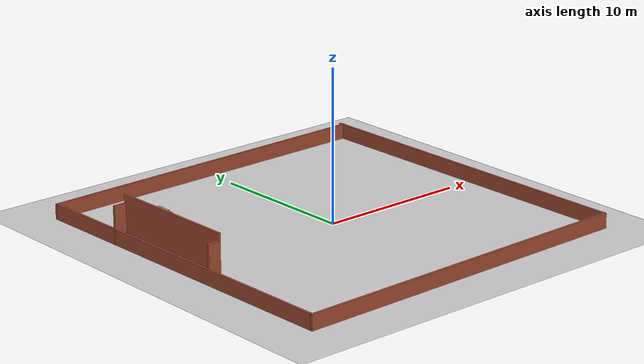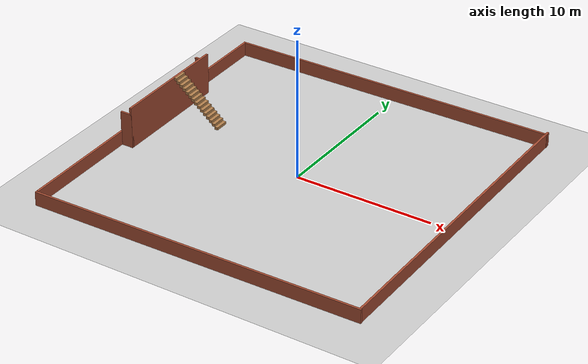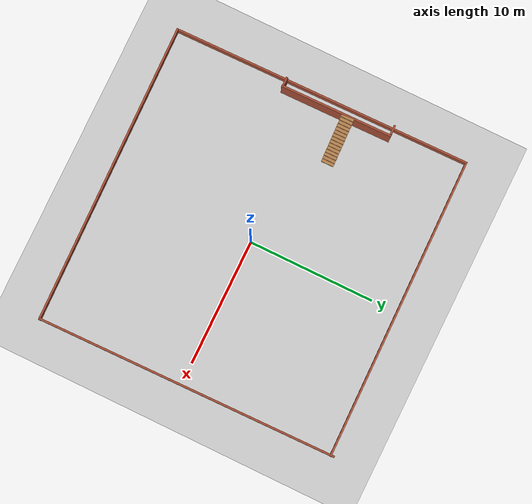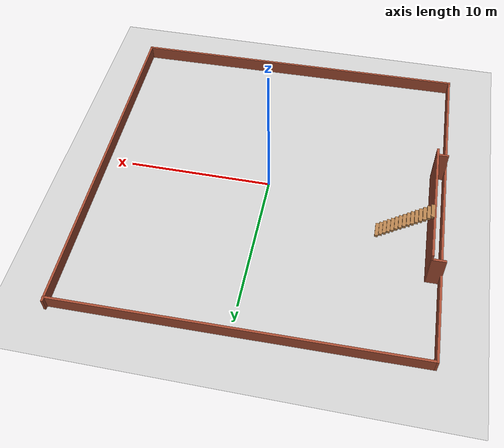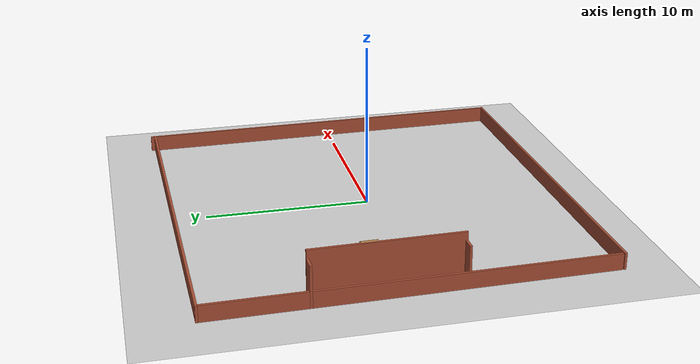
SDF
<sdf version="1.6">
 <world name="default">
  <light name="sun" type="directional">
   <pose>0 0 10 0 -0 0</pose>
   <diffuse>0.8 0.8 0.8 1</diffuse>
   <specular>0.2 0.2 0.2 1</specular>
   <attenuation>
    <range>1000</range>
    <constant>0.9</constant>
    <linear>0.01</linear>
    <quadratic>0.001</quadratic>
   </attenuation>
   <direction>-0.5 0.1 -0.9</direction>
  </light>
  <model name="ground_plane">
   <static>1</static>
   <link name="link">
    <collision name="collision">
     <geometry><plane><normal>0 0 1</normal><size>100 100</size></plane></geometry>
     <surface>
      <contact><collide_bitmask>65535</collide_bitmask></contact>
      <friction><ode><mu>100</mu><mu2>50</mu2></ode></friction>
     </surface>
    </collision>
    <visual name="visual">
     <cast_shadows>0</cast_shadows>
     <geometry><plane><normal>0 0 1</normal><size>100 100</size></plane></geometry>
     <material>
      <script><uri>file://media/materials/scripts/gazebo.material</uri><name>Gazebo/Grey</name></script>
     </material>
    </visual>
   </link>
  </model>
  <gravity>0 0 -9.8</gravity>
  <magnetic_field>6e-06 2.3e-05 -4.2e-05</magnetic_field>
  <atmosphere type="adiabatic"/>
  <physics name="default_physics" default="0" type="ode">
   <max_step_size>0.001</max_step_size>
   <real_time_factor>1</real_time_factor>
   <real_time_update_rate>1000</real_time_update_rate>
  </physics>
  <scene><ambient>0.4 0.4 0.4 1</ambient><background>0.7 0.7 0.7 1</background><shadows>1</shadows></scene>
  <audio><device>default</device></audio>
  <spherical_coordinates>
   <surface_model>EARTH_WGS84</surface_model>
   <latitude_deg>0</latitude_deg>
   <longitude_deg>0</longitude_deg>
   <elevation>0</elevation>
   <heading_deg>0</heading_deg>
  </spherical_coordinates>
  <model name="roof_top">
   <link name="Stairs_1">
    <visual name="Stairs_1_Visual_0">
     <pose>-2.39698 -7.70315 0.1 0 -0 0</pose>
     <geometry><box><size>1 0.233333 0.2</size></box></geometry>
     <material>
      <script><uri>file://media/materials/scripts/gazebo.material</uri><name>Gazebo/Wood</name></script>
      <ambient>1 1 1 1</ambient>
     </material>
     <meta><layer>0</layer></meta>
    </visual>
    <visual name="Stairs_1_Visual_1">
     <pose>-2.39698 -7.93648 0.3 0 -0 0</pose>
     <geometry><box><size>1 0.233333 0.2</size></box></geometry>
     <material>
      <script><uri>file://media/materials/scripts/gazebo.material</uri><name>Gazebo/Wood</name></script>
      <ambient>1 1 1 1</ambient>
     </material>
     <meta><layer>0</layer></meta>
    </visual>
    <visual name="Stairs_1_Visual_2">
     <pose>-2.39698 -8.16981 0.5 0 -0 0</pose>
     <geometry><box><size>1 0.233333 0.2</size></box></geometry>
     <material>
      <script><uri>file://media/materials/scripts/gazebo.material</uri><name>Gazebo/Wood</name></script>
      <ambient>1 1 1 1</ambient>
     </material>
     <meta><layer>0</layer></meta>
    </visual>
    <visual name="Stairs_1_Visual_3">
     <pose>-2.39698 -8.40315 0.7 0 -0 0</pose>
     <geometry><box><size>1 0.233333 0.2</size></box></geometry>
     <material>
      <script><uri>file://media/materials/scripts/gazebo.material</uri><name>Gazebo/Wood</name></script>
      <ambient>1 1 1 1</ambient>
     </material>
     <meta><layer>0</layer></meta>
    </visual>
    <visual name="Stairs_1_Visual_4">
     <pose>-2.39698 -8.63648 0.9 0 -0 0</pose>
     <geometry><box><size>1 0.233333 0.2</size></box></geometry>
     <material>
      <script><uri>file://media/materials/scripts/gazebo.material</uri><name>Gazebo/Wood</name></script>
      <ambient>1 1 1 1</ambient>
     </material>
     <meta><layer>0</layer></meta>
    </visual>
    <visual name="Stairs_1_Visual_5">
     <pose>-2.39698 -8.86981 1.1 0 -0 0</pose>
     <geometry><box><size>1 0.233333 0.2</size></box></geometry>
     <material>
      <script><uri>file://media/materials/scripts/gazebo.material</uri><name>Gazebo/Wood</name></script>
      <ambient>1 1 1 1</ambient>
     </material>
     <meta><layer>0</layer></meta>
    </visual>
    <visual name="Stairs_1_Visual_6">
     <pose>-2.39698 -9.10315 1.3 0 -0 0</pose>
     <geometry><box><size>1 0.233333 0.2</size></box></geometry>
     <material>
      <script><uri>file://media/materials/scripts/gazebo.material</uri><name>Gazebo/Wood</name></script>
      <ambient>1 1 1 1</ambient>
     </material>
     <meta><layer>0</layer></meta>
    </visual>
    <visual name="Stairs_1_Visual_7">
     <pose>-2.39698 -9.33648 1.5 0 -0 0</pose>
     <geometry><box><size>1 0.233333 0.2</size></box></geometry>
     <material>
      <script><uri>file://media/materials/scripts/gazebo.material</uri><name>Gazebo/Wood</name></script>
      <ambient>1 1 1 1</ambient>
     </material>
     <meta><layer>0</layer></meta>
    </visual>
    <visual name="Stairs_1_Visual_8">
     <pose>-2.39698 -9.56982 1.7 0 -0 0</pose>
     <geometry><box><size>1 0.233333 0.2</size></box></geometry>
     <material>
      <script><uri>file://media/materials/scripts/gazebo.material</uri><name>Gazebo/Wood</name></script>
      <ambient>1 1 1 1</ambient>
     </material>
     <meta><layer>0</layer></meta>
    </visual>
    <visual name="Stairs_1_Visual_9">
     <pose>-2.39698 -9.80315 1.9 0 -0 0</pose>
     <geometry><box><size>1 0.233333 0.2</size></box></geometry>
     <material>
      <script><uri>file://media/materials/scripts/gazebo.material</uri><name>Gazebo/Wood</name></script>
      <ambient>1 1 1 1</ambient>
     </material>
     <meta><layer>0</layer></meta>
    </visual>
    <visual name="Stairs_1_Visual_10">
     <pose>-2.39698 -10.0365 2.1 0 -0 0</pose>
     <geometry><box><size>1 0.233333 0.2</size></box></geometry>
     <material>
      <script><uri>file://media/materials/scripts/gazebo.material</uri><name>Gazebo/Wood</name></script>
      <ambient>1 1 1 1</ambient>
     </material>
     <meta><layer>0</layer></meta>
    </visual>
    <visual name="Stairs_1_Visual_11">
     <pose>-2.39698 -10.2698 2.3 0 -0 0</pose>
     <geometry><box><size>1 0.233333 0.2</size></box></geometry>
     <material>
      <script><uri>file://media/materials/scripts/gazebo.material</uri><name>Gazebo/Wood</name></script>
      <ambient>1 1 1 1</ambient>
     </material>
     <meta><layer>0</layer></meta>
    </visual>
    <visual name="Stairs_1_Visual_12">
     <pose>-2.39698 -10.5031 2.5 0 -0 0</pose>
     <geometry><box><size>1 0.233333 0.2</size></box></geometry>
     <material>
      <script><uri>file://media/materials/scripts/gazebo.material</uri><name>Gazebo/Wood</name></script>
      <ambient>1 1 1 1</ambient>
     </material>
     <meta><layer>0</layer></meta>
    </visual>
    <visual name="Stairs_1_Visual_13">
     <pose>-2.39698 -10.7365 2.7 0 -0 0</pose>
     <geometry><box><size>1 0.233333 0.2</size></box></geometry>
     <material>
      <script><uri>file://media/materials/scripts/gazebo.material</uri><name>Gazebo/Wood</name></script>
      <ambient>1 1 1 1</ambient>
     </material>
     <meta><layer>0</layer></meta>
    </visual>
    <visual name="Stairs_1_Visual_14">
     <pose>-2.39698 -10.9698 2.9 0 -0 0</pose>
     <geometry><box><size>1 0.233333 0.2</size></box></geometry>
     <material>
      <script><uri>file://media/materials/scripts/gazebo.material</uri><name>Gazebo/Wood</name></script>
      <ambient>1 1 1 1</ambient>
     </material>
     <meta><layer>0</layer></meta>
    </visual>
    <collision name="Stairs_1_Collision_0">
     <pose>-2.39698 -7.70315 0.1 0 -0 0</pose>
     <geometry><box><size>1 0.233333 0.2</size></box></geometry>
     <surface>
      <friction>
       <ode><mu>1</mu><mu2>1</mu2><fdir1>0 0 0</fdir1><slip1>0</slip1><slip2>0</slip2></ode>
       <torsional>
        <coefficient>1</coefficient>
        <patch_radius>0</patch_radius>
        <surface_radius>0</surface_radius>
        <use_patch_radius>1</use_patch_radius>
        <ode><slip>0</slip></ode>
       </torsional>
      </friction>
      <bounce><restitution_coefficient>0</restitution_coefficient><threshold>1e+06</threshold></bounce>
      <contact>
       <collide_without_contact>0</collide_without_contact>
       <collide_without_contact_bitmask>1</collide_without_contact_bitmask>
       <collide_bitmask>1</collide_bitmask>
       <ode>
        <soft_cfm>0</soft_cfm>
        <soft_erp>0.2</soft_erp>
        <kp>1e+13</kp>
        <kd>1</kd>
        <max_vel>0.01</max_vel>
        <min_depth>0</min_depth>
       </ode>
       <bullet>
        <split_impulse>1</split_impulse>
        <split_impulse_penetration_threshold>-0.01</split_impulse_penetration_threshold>
        <soft_cfm>0</soft_cfm>
        <soft_erp>0.2</soft_erp>
        <kp>1e+13</kp>
        <kd>1</kd>
       </bullet>
      </contact>
     </surface>
    </collision>
    <collision name="Stairs_1_Collision_1">
     <pose>-2.39698 -7.93648 0.3 0 -0 0</pose>
     <geometry><box><size>1 0.233333 0.2</size></box></geometry>
     <surface>
      <friction>
       <ode><mu>1</mu><mu2>1</mu2><fdir1>0 0 0</fdir1><slip1>0</slip1><slip2>0</slip2></ode>
       <torsional>
        <coefficient>1</coefficient>
        <patch_radius>0</patch_radius>
        <surface_radius>0</surface_radius>
        <use_patch_radius>1</use_patch_radius>
        <ode><slip>0</slip></ode>
       </torsional>
      </friction>
      <bounce><restitution_coefficient>0</restitution_coefficient><threshold>1e+06</threshold></bounce>
      <contact>
       <collide_without_contact>0</collide_without_contact>
       <collide_without_contact_bitmask>1</collide_without_contact_bitmask>
       <collide_bitmask>1</collide_bitmask>
       <ode>
        <soft_cfm>0</soft_cfm>
        <soft_erp>0.2</soft_erp>
        <kp>1e+13</kp>
        <kd>1</kd>
        <max_vel>0.01</max_vel>
        <min_depth>0</min_depth>
       </ode>
       <bullet>
        <split_impulse>1</split_impulse>
        <split_impulse_penetration_threshold>-0.01</split_impulse_penetration_threshold>
        <soft_cfm>0</soft_cfm>
        <soft_erp>0.2</soft_erp>
        <kp>1e+13</kp>
        <kd>1</kd>
       </bullet>
      </contact>
     </surface>
    </collision>
    <collision name="Stairs_1_Collision_2">
     <pose>-2.39698 -8.16981 0.5 0 -0 0</pose>
     <geometry><box><size>1 0.233333 0.2</size></box></geometry>
     <surface>
      <friction>
       <ode><mu>1</mu><mu2>1</mu2><fdir1>0 0 0</fdir1><slip1>0</slip1><slip2>0</slip2></ode>
       <torsional>
        <coefficient>1</coefficient>
        <patch_radius>0</patch_radius>
        <surface_radius>0</surface_radius>
        <use_patch_radius>1</use_patch_radius>
        <ode><slip>0</slip></ode>
       </torsional>
      </friction>
      <bounce><restitution_coefficient>0</restitution_coefficient><threshold>1e+06</threshold></bounce>
      <contact>
       <collide_without_contact>0</collide_without_contact>
       <collide_without_contact_bitmask>1</collide_without_contact_bitmask>
       <collide_bitmask>1</collide_bitmask>
       <ode>
        <soft_cfm>0</soft_cfm>
        <soft_erp>0.2</soft_erp>
        <kp>1e+13</kp>
        <kd>1</kd>
        <max_vel>0.01</max_vel>
        <min_depth>0</min_depth>
       </ode>
       <bullet>
        <split_impulse>1</split_impulse>
        <split_impulse_penetration_threshold>-0.01</split_impulse_penetration_threshold>
        <soft_cfm>0</soft_cfm>
        <soft_erp>0.2</soft_erp>
        <kp>1e+13</kp>
        <kd>1</kd>
       </bullet>
      </contact>
     </surface>
    </collision>
    <collision name="Stairs_1_Collision_3">
     <pose>-2.39698 -8.40315 0.7 0 -0 0</pose>
     <geometry><box><size>1 0.233333 0.2</size></box></geometry>
     <surface>
      <friction>
       <ode><mu>1</mu><mu2>1</mu2><fdir1>0 0 0</fdir1><slip1>0</slip1><slip2>0</slip2></ode>
       <torsional>
        <coefficient>1</coefficient>
        <patch_radius>0</patch_radius>
        <surface_radius>0</surface_radius>
        <use_patch_radius>1</use_patch_radius>
        <ode><slip>0</slip></ode>
       </torsional>
      </friction>
      <bounce><restitution_coefficient>0</restitution_coefficient><threshold>1e+06</threshold></bounce>
      <contact>
       <collide_without_contact>0</collide_without_contact>
       <collide_without_contact_bitmask>1</collide_without_contact_bitmask>
       <collide_bitmask>1</collide_bitmask>
       <ode>
        <soft_cfm>0</soft_cfm>
        <soft_erp>0.2</soft_erp>
        <kp>1e+13</kp>
        <kd>1</kd>
        <max_vel>0.01</max_vel>
        <min_depth>0</min_depth>
       </ode>
       <bullet>
        <split_impulse>1</split_impulse>
        <split_impulse_penetration_threshold>-0.01</split_impulse_penetration_threshold>
        <soft_cfm>0</soft_cfm>
        <soft_erp>0.2</soft_erp>
        <kp>1e+13</kp>
        <kd>1</kd>
       </bullet>
      </contact>
     </surface>
    </collision>
    <collision name="Stairs_1_Collision_4">
     <pose>-2.39698 -8.63648 0.9 0 -0 0</pose>
     <geometry><box><size>1 0.233333 0.2</size></box></geometry>
     <surface>
      <friction>
       <ode><mu>1</mu><mu2>1</mu2><fdir1>0 0 0</fdir1><slip1>0</slip1><slip2>0</slip2></ode>
       <torsional>
        <coefficient>1</coefficient>
        <patch_radius>0</patch_radius>
        <surface_radius>0</surface_radius>
        <use_patch_radius>1</use_patch_radius>
        <ode><slip>0</slip></ode>
       </torsional>
      </friction>
      <bounce><restitution_coefficient>0</restitution_coefficient><threshold>1e+06</threshold></bounce>
      <contact>
       <collide_without_contact>0</collide_without_contact>
       <collide_without_contact_bitmask>1</collide_without_contact_bitmask>
       <collide_bitmask>1</collide_bitmask>
       <ode>
        <soft_cfm>0</soft_cfm>
        <soft_erp>0.2</soft_erp>
        <kp>1e+13</kp>
        <kd>1</kd>
        <max_vel>0.01</max_vel>
        <min_depth>0</min_depth>
       </ode>
       <bullet>
        <split_impulse>1</split_impulse>
        <split_impulse_penetration_threshold>-0.01</split_impulse_penetration_threshold>
        <soft_cfm>0</soft_cfm>
        <soft_erp>0.2</soft_erp>
        <kp>1e+13</kp>
        <kd>1</kd>
       </bullet>
      </contact>
     </surface>
    </collision>
    <collision name="Stairs_1_Collision_5">
     <pose>-2.39698 -8.86981 1.1 0 -0 0</pose>
     <geometry><box><size>1 0.233333 0.2</size></box></geometry>
     <surface>
      <friction>
       <ode><mu>1</mu><mu2>1</mu2><fdir1>0 0 0</fdir1><slip1>0</slip1><slip2>0</slip2></ode>
       <torsional>
        <coefficient>1</coefficient>
        <patch_radius>0</patch_radius>
        <surface_radius>0</surface_radius>
        <use_patch_radius>1</use_patch_radius>
        <ode><slip>0</slip></ode>
       </torsional>
      </friction>
      <bounce><restitution_coefficient>0</restitution_coefficient><threshold>1e+06</threshold></bounce>
      <contact>
       <collide_without_contact>0</collide_without_contact>
       <collide_without_contact_bitmask>1</collide_without_contact_bitmask>
       <collide_bitmask>1</collide_bitmask>
       <ode>
        <soft_cfm>0</soft_cfm>
        <soft_erp>0.2</soft_erp>
        <kp>1e+13</kp>
        <kd>1</kd>
        <max_vel>0.01</max_vel>
        <min_depth>0</min_depth>
       </ode>
       <bullet>
        <split_impulse>1</split_impulse>
        <split_impulse_penetration_threshold>-0.01</split_impulse_penetration_threshold>
        <soft_cfm>0</soft_cfm>
        <soft_erp>0.2</soft_erp>
        <kp>1e+13</kp>
        <kd>1</kd>
       </bullet>
      </contact>
     </surface>
    </collision>
    <collision name="Stairs_1_Collision_6">
     <pose>-2.39698 -9.10315 1.3 0 -0 0</pose>
     <geometry><box><size>1 0.233333 0.2</size></box></geometry>
     <surface>
      <friction>
       <ode><mu>1</mu><mu2>1</mu2><fdir1>0 0 0</fdir1><slip1>0</slip1><slip2>0</slip2></ode>
       <torsional>
        <coefficient>1</coefficient>
        <patch_radius>0</patch_radius>
        <surface_radius>0</surface_radius>
        <use_patch_radius>1</use_patch_radius>
        <ode><slip>0</slip></ode>
       </torsional>
      </friction>
      <bounce><restitution_coefficient>0</restitution_coefficient><threshold>1e+06</threshold></bounce>
      <contact>
       <collide_without_contact>0</collide_without_contact>
       <collide_without_contact_bitmask>1</collide_without_contact_bitmask>
       <collide_bitmask>1</collide_bitmask>
       <ode>
        <soft_cfm>0</soft_cfm>
        <soft_erp>0.2</soft_erp>
        <kp>1e+13</kp>
        <kd>1</kd>
        <max_vel>0.01</max_vel>
        <min_depth>0</min_depth>
       </ode>
       <bullet>
        <split_impulse>1</split_impulse>
        <split_impulse_penetration_threshold>-0.01</split_impulse_penetration_threshold>
        <soft_cfm>0</soft_cfm>
        <soft_erp>0.2</soft_erp>
        <kp>1e+13</kp>
        <kd>1</kd>
       </bullet>
      </contact>
     </surface>
    </collision>
    <collision name="Stairs_1_Collision_7">
     <pose>-2.39698 -9.33648 1.5 0 -0 0</pose>
     <geometry><box><size>1 0.233333 0.2</size></box></geometry>
     <surface>
      <friction>
       <ode><mu>1</mu><mu2>1</mu2><fdir1>0 0 0</fdir1><slip1>0</slip1><slip2>0</slip2></ode>
       <torsional>
        <coefficient>1</coefficient>
        <patch_radius>0</patch_radius>
        <surface_radius>0</surface_radius>
        <use_patch_radius>1</use_patch_radius>
        <ode><slip>0</slip></ode>
       </torsional>
      </friction>
      <bounce><restitution_coefficient>0</restitution_coefficient><threshold>1e+06</threshold></bounce>
      <contact>
       <collide_without_contact>0</collide_without_contact>
       <collide_without_contact_bitmask>1</collide_without_contact_bitmask>
       <collide_bitmask>1</collide_bitmask>
       <ode>
        <soft_cfm>0</soft_cfm>
        <soft_erp>0.2</soft_erp>
        <kp>1e+13</kp>
        <kd>1</kd>
        <max_vel>0.01</max_vel>
        <min_depth>0</min_depth>
       </ode>
       <bullet>
        <split_impulse>1</split_impulse>
        <split_impulse_penetration_threshold>-0.01</split_impulse_penetration_threshold>
        <soft_cfm>0</soft_cfm>
        <soft_erp>0.2</soft_erp>
        <kp>1e+13</kp>
        <kd>1</kd>
       </bullet>
      </contact>
     </surface>
    </collision>
    <collision name="Stairs_1_Collision_8">
     <pose>-2.39698 -9.56982 1.7 0 -0 0</pose>
     <geometry><box><size>1 0.233333 0.2</size></box></geometry>
     <surface>
      <friction>
       <ode><mu>1</mu><mu2>1</mu2><fdir1>0 0 0</fdir1><slip1>0</slip1><slip2>0</slip2></ode>
       <torsional>
        <coefficient>1</coefficient>
        <patch_radius>0</patch_radius>
        <surface_radius>0</surface_radius>
        <use_patch_radius>1</use_patch_radius>
        <ode><slip>0</slip></ode>
       </torsional>
      </friction>
      <bounce><restitution_coefficient>0</restitution_coefficient><threshold>1e+06</threshold></bounce>
      <contact>
       <collide_without_contact>0</collide_without_contact>
       <collide_without_contact_bitmask>1</collide_without_contact_bitmask>
       <collide_bitmask>1</collide_bitmask>
       <ode>
        <soft_cfm>0</soft_cfm>
        <soft_erp>0.2</soft_erp>
        <kp>1e+13</kp>
        <kd>1</kd>
        <max_vel>0.01</max_vel>
        <min_depth>0</min_depth>
       </ode>
       <bullet>
        <split_impulse>1</split_impulse>
        <split_impulse_penetration_threshold>-0.01</split_impulse_penetration_threshold>
        <soft_cfm>0</soft_cfm>
        <soft_erp>0.2</soft_erp>
        <kp>1e+13</kp>
        <kd>1</kd>
       </bullet>
      </contact>
     </surface>
    </collision>
    <collision name="Stairs_1_Collision_9">
     <pose>-2.39698 -9.80315 1.9 0 -0 0</pose>
     <geometry><box><size>1 0.233333 0.2</size></box></geometry>
     <surface>
      <friction>
       <ode><mu>1</mu><mu2>1</mu2><fdir1>0 0 0</fdir1><slip1>0</slip1><slip2>0</slip2></ode>
       <torsional>
        <coefficient>1</coefficient>
        <patch_radius>0</patch_radius>
        <surface_radius>0</surface_radius>
        <use_patch_radius>1</use_patch_radius>
        <ode><slip>0</slip></ode>
       </torsional>
      </friction>
      <bounce><restitution_coefficient>0</restitution_coefficient><threshold>1e+06</threshold></bounce>
      <contact>
       <collide_without_contact>0</collide_without_contact>
       <collide_without_contact_bitmask>1</collide_without_contact_bitmask>
       <collide_bitmask>1</collide_bitmask>
       <ode>
        <soft_cfm>0</soft_cfm>
        <soft_erp>0.2</soft_erp>
        <kp>1e+13</kp>
        <kd>1</kd>
        <max_vel>0.01</max_vel>
        <min_depth>0</min_depth>
       </ode>
       <bullet>
        <split_impulse>1</split_impulse>
        <split_impulse_penetration_threshold>-0.01</split_impulse_penetration_threshold>
        <soft_cfm>0</soft_cfm>
        <soft_erp>0.2</soft_erp>
        <kp>1e+13</kp>
        <kd>1</kd>
       </bullet>
      </contact>
     </surface>
    </collision>
    <collision name="Stairs_1_Collision_10">
     <pose>-2.39698 -10.0365 2.1 0 -0 0</pose>
     <geometry><box><size>1 0.233333 0.2</size></box></geometry>
     <surface>
      <friction>
       <ode><mu>1</mu><mu2>1</mu2><fdir1>0 0 0</fdir1><slip1>0</slip1><slip2>0</slip2></ode>
       <torsional>
        <coefficient>1</coefficient>
        <patch_radius>0</patch_radius>
        <surface_radius>0</surface_radius>
        <use_patch_radius>1</use_patch_radius>
        <ode><slip>0</slip></ode>
       </torsional>
      </friction>
      <bounce><restitution_coefficient>0</restitution_coefficient><threshold>1e+06</threshold></bounce>
      <contact>
       <collide_without_contact>0</collide_without_contact>
       <collide_without_contact_bitmask>1</collide_without_contact_bitmask>
       <collide_bitmask>1</collide_bitmask>
       <ode>
        <soft_cfm>0</soft_cfm>
        <soft_erp>0.2</soft_erp>
        <kp>1e+13</kp>
        <kd>1</kd>
        <max_vel>0.01</max_vel>
        <min_depth>0</min_depth>
       </ode>
       <bullet>
        <split_impulse>1</split_impulse>
        <split_impulse_penetration_threshold>-0.01</split_impulse_penetration_threshold>
        <soft_cfm>0</soft_cfm>
        <soft_erp>0.2</soft_erp>
        <kp>1e+13</kp>
        <kd>1</kd>
       </bullet>
      </contact>
     </surface>
    </collision>
    <collision name="Stairs_1_Collision_11">
     <pose>-2.39698 -10.2698 2.3 0 -0 0</pose>
     <geometry><box><size>1 0.233333 0.2</size></box></geometry>
     <surface>
      <friction>
       <ode><mu>1</mu><mu2>1</mu2><fdir1>0 0 0</fdir1><slip1>0</slip1><slip2>0</slip2></ode>
       <torsional>
        <coefficient>1</coefficient>
        <patch_radius>0</patch_radius>
        <surface_radius>0</surface_radius>
        <use_patch_radius>1</use_patch_radius>
        <ode><slip>0</slip></ode>
       </torsional>
      </friction>
      <bounce><restitution_coefficient>0</restitution_coefficient><threshold>1e+06</threshold></bounce>
      <contact>
       <collide_without_contact>0</collide_without_contact>
       <collide_without_contact_bitmask>1</collide_without_contact_bitmask>
       <collide_bitmask>1</collide_bitmask>
       <ode>
        <soft_cfm>0</soft_cfm>
        <soft_erp>0.2</soft_erp>
        <kp>1e+13</kp>
        <kd>1</kd>
        <max_vel>0.01</max_vel>
        <min_depth>0</min_depth>
       </ode>
       <bullet>
        <split_impulse>1</split_impulse>
        <split_impulse_penetration_threshold>-0.01</split_impulse_penetration_threshold>
        <soft_cfm>0</soft_cfm>
        <soft_erp>0.2</soft_erp>
        <kp>1e+13</kp>
        <kd>1</kd>
       </bullet>
      </contact>
     </surface>
    </collision>
    <collision name="Stairs_1_Collision_12">
     <pose>-2.39698 -10.5031 2.5 0 -0 0</pose>
     <geometry><box><size>1 0.233333 0.2</size></box></geometry>
     <surface>
      <friction>
       <ode><mu>1</mu><mu2>1</mu2><fdir1>0 0 0</fdir1><slip1>0</slip1><slip2>0</slip2></ode>
       <torsional>
        <coefficient>1</coefficient>
        <patch_radius>0</patch_radius>
        <surface_radius>0</surface_radius>
        <use_patch_radius>1</use_patch_radius>
        <ode><slip>0</slip></ode>
       </torsional>
      </friction>
      <bounce><restitution_coefficient>0</restitution_coefficient><threshold>1e+06</threshold></bounce>
      <contact>
       <collide_without_contact>0</collide_without_contact>
       <collide_without_contact_bitmask>1</collide_without_contact_bitmask>
       <collide_bitmask>1</collide_bitmask>
       <ode>
        <soft_cfm>0</soft_cfm>
        <soft_erp>0.2</soft_erp>
        <kp>1e+13</kp>
        <kd>1</kd>
        <max_vel>0.01</max_vel>
        <min_depth>0</min_depth>
       </ode>
       <bullet>
        <split_impulse>1</split_impulse>
        <split_impulse_penetration_threshold>-0.01</split_impulse_penetration_threshold>
        <soft_cfm>0</soft_cfm>
        <soft_erp>0.2</soft_erp>
        <kp>1e+13</kp>
        <kd>1</kd>
       </bullet>
      </contact>
     </surface>
    </collision>
    <collision name="Stairs_1_Collision_13">
     <pose>-2.39698 -10.7365 2.7 0 -0 0</pose>
     <geometry><box><size>1 0.233333 0.2</size></box></geometry>
     <surface>
      <friction>
       <ode><mu>1</mu><mu2>1</mu2><fdir1>0 0 0</fdir1><slip1>0</slip1><slip2>0</slip2></ode>
       <torsional>
        <coefficient>1</coefficient>
        <patch_radius>0</patch_radius>
        <surface_radius>0</surface_radius>
        <use_patch_radius>1</use_patch_radius>
        <ode><slip>0</slip></ode>
       </torsional>
      </friction>
      <bounce><restitution_coefficient>0</restitution_coefficient><threshold>1e+06</threshold></bounce>
      <contact>
       <collide_without_contact>0</collide_without_contact>
       <collide_without_contact_bitmask>1</collide_without_contact_bitmask>
       <collide_bitmask>1</collide_bitmask>
       <ode>
        <soft_cfm>0</soft_cfm>
        <soft_erp>0.2</soft_erp>
        <kp>1e+13</kp>
        <kd>1</kd>
        <max_vel>0.01</max_vel>
        <min_depth>0</min_depth>
       </ode>
       <bullet>
        <split_impulse>1</split_impulse>
        <split_impulse_penetration_threshold>-0.01</split_impulse_penetration_threshold>
        <soft_cfm>0</soft_cfm>
        <soft_erp>0.2</soft_erp>
        <kp>1e+13</kp>
        <kd>1</kd>
       </bullet>
      </contact>
     </surface>
    </collision>
    <collision name="Stairs_1_Collision_14">
     <pose>-2.39698 -10.9698 2.9 0 -0 0</pose>
     <geometry><box><size>1 0.233333 0.2</size></box></geometry>
     <surface>
      <friction>
       <ode><mu>1</mu><mu2>1</mu2><fdir1>0 0 0</fdir1><slip1>0</slip1><slip2>0</slip2></ode>
       <torsional>
        <coefficient>1</coefficient>
        <patch_radius>0</patch_radius>
        <surface_radius>0</surface_radius>
        <use_patch_radius>1</use_patch_radius>
        <ode><slip>0</slip></ode>
       </torsional>
      </friction>
      <bounce><restitution_coefficient>0</restitution_coefficient><threshold>1e+06</threshold></bounce>
      <contact>
       <collide_without_contact>0</collide_without_contact>
       <collide_without_contact_bitmask>1</collide_without_contact_bitmask>
       <collide_bitmask>1</collide_bitmask>
       <ode>
        <soft_cfm>0</soft_cfm>
        <soft_erp>0.2</soft_erp>
        <kp>1e+13</kp>
        <kd>1</kd>
        <max_vel>0.01</max_vel>
        <min_depth>0</min_depth>
       </ode>
       <bullet>
        <split_impulse>1</split_impulse>
        <split_impulse_penetration_threshold>-0.01</split_impulse_penetration_threshold>
        <soft_cfm>0</soft_cfm>
        <soft_erp>0.2</soft_erp>
        <kp>1e+13</kp>
        <kd>1</kd>
       </bullet>
      </contact>
     </surface>
    </collision>
   </link>
   <link name="Wall_1">
    <pose>0.018392 -11.9494 0 0 -0 0</pose>
    <visual name="Wall_1_Visual">
     <pose>0 0 0.5 0 -0 0</pose>
     <geometry><box><size>23.6736 0.15 1</size></box></geometry>
     <material>
      <script><uri>file://media/materials/scripts/gazebo.material</uri><name>Gazebo/Bricks</name></script>
      <ambient>1 1 1 1</ambient>
     </material>
     <meta><layer>0</layer></meta>
    </visual>
    <collision name="Wall_1_Collision">
     <pose>0 0 0.5 0 -0 0</pose>
     <geometry><box><size>23.6736 0.15 1</size></box></geometry>
     <surface>
      <friction>
       <ode><mu>1</mu><mu2>1</mu2><fdir1>0 0 0</fdir1><slip1>0</slip1><slip2>0</slip2></ode>
       <torsional>
        <coefficient>1</coefficient>
        <patch_radius>0</patch_radius>
        <surface_radius>0</surface_radius>
        <use_patch_radius>1</use_patch_radius>
        <ode><slip>0</slip></ode>
       </torsional>
      </friction>
      <bounce><restitution_coefficient>0</restitution_coefficient><threshold>1e+06</threshold></bounce>
      <contact>
       <collide_without_contact>0</collide_without_contact>
       <collide_without_contact_bitmask>1</collide_without_contact_bitmask>
       <collide_bitmask>1</collide_bitmask>
       <ode>
        <soft_cfm>0</soft_cfm>
        <soft_erp>0.2</soft_erp>
        <kp>1e+13</kp>
        <kd>1</kd>
        <max_vel>0.01</max_vel>
        <min_depth>0</min_depth>
       </ode>
       <bullet>
        <split_impulse>1</split_impulse>
        <split_impulse_penetration_threshold>-0.01</split_impulse_penetration_threshold>
        <soft_cfm>0</soft_cfm>
        <soft_erp>0.2</soft_erp>
        <kp>1e+13</kp>
        <kd>1</kd>
       </bullet>
      </contact>
     </surface>
    </collision>
   </link>
   <link name="Wall_12">
    <pose>-5.77647 -11.5256 0 0 -0 1.57062</pose>
    <visual name="Wall_12_Visual">
     <pose>0 0 1.25 0 -0 0</pose>
     <geometry><box><size>1 0.15 2.5</size></box></geometry>
     <material>
      <script><uri>file://media/materials/scripts/gazebo.material</uri><name>Gazebo/Bricks</name></script>
      <ambient>1 1 1 1</ambient>
     </material>
     <meta><layer>0</layer></meta>
    </visual>
    <collision name="Wall_12_Collision">
     <pose>0 0 1.25 0 -0 0</pose>
     <geometry><box><size>1 0.15 2.5</size></box></geometry>
     <surface>
      <friction>
       <ode><mu>1</mu><mu2>1</mu2><fdir1>0 0 0</fdir1><slip1>0</slip1><slip2>0</slip2></ode>
       <torsional>
        <coefficient>1</coefficient>
        <patch_radius>0</patch_radius>
        <surface_radius>0</surface_radius>
        <use_patch_radius>1</use_patch_radius>
        <ode><slip>0</slip></ode>
       </torsional>
      </friction>
      <bounce><restitution_coefficient>0</restitution_coefficient><threshold>1e+06</threshold></bounce>
      <contact>
       <collide_without_contact>0</collide_without_contact>
       <collide_without_contact_bitmask>1</collide_without_contact_bitmask>
       <collide_bitmask>1</collide_bitmask>
       <ode>
        <soft_cfm>0</soft_cfm>
        <soft_erp>0.2</soft_erp>
        <kp>1e+13</kp>
        <kd>1</kd>
        <max_vel>0.01</max_vel>
        <min_depth>0</min_depth>
       </ode>
       <bullet>
        <split_impulse>1</split_impulse>
        <split_impulse_penetration_threshold>-0.01</split_impulse_penetration_threshold>
        <soft_cfm>0</soft_cfm>
        <soft_erp>0.2</soft_erp>
        <kp>1e+13</kp>
        <kd>1</kd>
       </bullet>
      </contact>
     </surface>
    </collision>
   </link>
   <link name="Wall_13">
    <pose>-1.41589 -11.1004 0 0 -0 0</pose>
    <visual name="Wall_13_Visual">
     <pose>0 0 1.5 0 -0 0</pose>
     <geometry><box><size>8.871 0.15 3</size></box></geometry>
     <material>
      <script><uri>file://media/materials/scripts/gazebo.material</uri><name>Gazebo/Bricks</name></script>
      <ambient>1 1 1 1</ambient>
     </material>
     <meta><layer>0</layer></meta>
    </visual>
    <collision name="Wall_13_Collision">
     <pose>0 0 1.5 0 -0 0</pose>
     <geometry><box><size>8.871 0.15 3</size></box></geometry>
     <surface>
      <friction>
       <ode><mu>1</mu><mu2>1</mu2><fdir1>0 0 0</fdir1><slip1>0</slip1><slip2>0</slip2></ode>
       <torsional>
        <coefficient>1</coefficient>
        <patch_radius>0</patch_radius>
        <surface_radius>0</surface_radius>
        <use_patch_radius>1</use_patch_radius>
        <ode><slip>0</slip></ode>
       </torsional>
      </friction>
      <bounce><restitution_coefficient>0</restitution_coefficient><threshold>1e+06</threshold></bounce>
      <contact>
       <collide_without_contact>0</collide_without_contact>
       <collide_without_contact_bitmask>1</collide_without_contact_bitmask>
       <collide_bitmask>1</collide_bitmask>
       <ode>
        <soft_cfm>0</soft_cfm>
        <soft_erp>0.2</soft_erp>
        <kp>1e+13</kp>
        <kd>1</kd>
        <max_vel>0.01</max_vel>
        <min_depth>0</min_depth>
       </ode>
       <bullet>
        <split_impulse>1</split_impulse>
        <split_impulse_penetration_threshold>-0.01</split_impulse_penetration_threshold>
        <soft_cfm>0</soft_cfm>
        <soft_erp>0.2</soft_erp>
        <kp>1e+13</kp>
        <kd>1</kd>
       </bullet>
      </contact>
     </surface>
    </collision>
   </link>
   <link name="Wall_14">
    <pose>2.94461 -11.4664 0 0 0 -1.5708</pose>
    <visual name="Wall_14_Visual">
     <pose>0 0 1.25 0 -0 0</pose>
     <geometry><box><size>0.882 0.15 2.5</size></box></geometry>
     <material>
      <script><uri>file://media/materials/scripts/gazebo.material</uri><name>Gazebo/Bricks</name></script>
      <ambient>1 1 1 1</ambient>
     </material>
     <meta><layer>0</layer></meta>
    </visual>
    <collision name="Wall_14_Collision">
     <pose>0 0 1.25 0 -0 0</pose>
     <geometry><box><size>0.882 0.15 2.5</size></box></geometry>
     <surface>
      <friction>
       <ode><mu>1</mu><mu2>1</mu2><fdir1>0 0 0</fdir1><slip1>0</slip1><slip2>0</slip2></ode>
       <torsional>
        <coefficient>1</coefficient>
        <patch_radius>0</patch_radius>
        <surface_radius>0</surface_radius>
        <use_patch_radius>1</use_patch_radius>
        <ode><slip>0</slip></ode>
       </torsional>
      </friction>
      <bounce><restitution_coefficient>0</restitution_coefficient><threshold>1e+06</threshold></bounce>
      <contact>
       <collide_without_contact>0</collide_without_contact>
       <collide_without_contact_bitmask>1</collide_without_contact_bitmask>
       <collide_bitmask>1</collide_bitmask>
       <ode>
        <soft_cfm>0</soft_cfm>
        <soft_erp>0.2</soft_erp>
        <kp>1e+13</kp>
        <kd>1</kd>
        <max_vel>0.01</max_vel>
        <min_depth>0</min_depth>
       </ode>
       <bullet>
        <split_impulse>1</split_impulse>
        <split_impulse_penetration_threshold>-0.01</split_impulse_penetration_threshold>
        <soft_cfm>0</soft_cfm>
        <soft_erp>0.2</soft_erp>
        <kp>1e+13</kp>
        <kd>1</kd>
       </bullet>
      </contact>
     </surface>
    </collision>
   </link>
   <link name="Wall_3">
    <pose>-11.7434 0.000586 0 0 -0 1.5708</pose>
    <visual name="Wall_3_Visual">
     <pose>0 0 0.5 0 -0 0</pose>
     <geometry><box><size>24.05 0.15 1</size></box></geometry>
     <material>
      <script><uri>file://media/materials/scripts/gazebo.material</uri><name>Gazebo/Bricks</name></script>
      <ambient>1 1 1 1</ambient>
     </material>
     <meta><layer>0</layer></meta>
    </visual>
    <collision name="Wall_3_Collision">
     <pose>0 0 0.5 0 -0 0</pose>
     <geometry><box><size>24.05 0.15 1</size></box></geometry>
     <surface>
      <friction>
       <ode><mu>1</mu><mu2>1</mu2><fdir1>0 0 0</fdir1><slip1>0</slip1><slip2>0</slip2></ode>
       <torsional>
        <coefficient>1</coefficient>
        <patch_radius>0</patch_radius>
        <surface_radius>0</surface_radius>
        <use_patch_radius>1</use_patch_radius>
        <ode><slip>0</slip></ode>
       </torsional>
      </friction>
      <bounce><restitution_coefficient>0</restitution_coefficient><threshold>1e+06</threshold></bounce>
      <contact>
       <collide_without_contact>0</collide_without_contact>
       <collide_without_contact_bitmask>1</collide_without_contact_bitmask>
       <collide_bitmask>1</collide_bitmask>
       <ode>
        <soft_cfm>0</soft_cfm>
        <soft_erp>0.2</soft_erp>
        <kp>1e+13</kp>
        <kd>1</kd>
        <max_vel>0.01</max_vel>
        <min_depth>0</min_depth>
       </ode>
       <bullet>
        <split_impulse>1</split_impulse>
        <split_impulse_penetration_threshold>-0.01</split_impulse_penetration_threshold>
        <soft_cfm>0</soft_cfm>
        <soft_erp>0.2</soft_erp>
        <kp>1e+13</kp>
        <kd>1</kd>
       </bullet>
      </contact>
     </surface>
    </collision>
   </link>
   <link name="Wall_5">
    <pose>11.9684 0.000586 0 0 -0 1.5708</pose>
    <visual name="Wall_5_Visual">
     <pose>0 0 0.5 0 -0 0</pose>
     <geometry><box><size>24.05 0.15 1</size></box></geometry>
     <material>
      <script><uri>file://media/materials/scripts/gazebo.material</uri><name>Gazebo/Bricks</name></script>
      <ambient>1 1 1 1</ambient>
     </material>
     <meta><layer>0</layer></meta>
    </visual>
    <collision name="Wall_5_Collision">
     <pose>0 0 0.5 0 -0 0</pose>
     <geometry><box><size>24.05 0.15 1</size></box></geometry>
     <surface>
      <friction>
       <ode><mu>1</mu><mu2>1</mu2><fdir1>0 0 0</fdir1><slip1>0</slip1><slip2>0</slip2></ode>
       <torsional>
        <coefficient>1</coefficient>
        <patch_radius>0</patch_radius>
        <surface_radius>0</surface_radius>
        <use_patch_radius>1</use_patch_radius>
        <ode><slip>0</slip></ode>
       </torsional>
      </friction>
      <bounce><restitution_coefficient>0</restitution_coefficient><threshold>1e+06</threshold></bounce>
      <contact>
       <collide_without_contact>0</collide_without_contact>
       <collide_without_contact_bitmask>1</collide_without_contact_bitmask>
       <collide_bitmask>1</collide_bitmask>
       <ode>
        <soft_cfm>0</soft_cfm>
        <soft_erp>0.2</soft_erp>
        <kp>1e+13</kp>
        <kd>1</kd>
        <max_vel>0.01</max_vel>
        <min_depth>0</min_depth>
       </ode>
       <bullet>
        <split_impulse>1</split_impulse>
        <split_impulse_penetration_threshold>-0.01</split_impulse_penetration_threshold>
        <soft_cfm>0</soft_cfm>
        <soft_erp>0.2</soft_erp>
        <kp>1e+13</kp>
        <kd>1</kd>
       </bullet>
      </contact>
     </surface>
    </collision>
   </link>
   <link name="Wall_7">
    <pose>-0.018393 11.9292 0 0 -0 3.14159</pose>
    <inertial>
     <mass>1</mass>
     <inertia><ixx>1</ixx><ixy>0</ixy><ixz>0</ixz><iyy>1</iyy><iyz>0</iyz><izz>1</izz></inertia>
    </inertial>
    <visual name="Wall_7_Visual">
     <pose>0 0 0.5 0 -0 0</pose>
     <geometry><box><size>24.05 0.15 1</size></box></geometry>
     <material>
      <script><uri>file://media/materials/scripts/gazebo.material</uri><name>Gazebo/Bricks</name></script>
      <ambient>1 1 1 1</ambient>
      <shader type="vertex"><normal_map>__default__</normal_map></shader>
     </material>
     <meta><layer>0</layer></meta>
    </visual>
   </link>
   <static>1</static>
   <pose>-0.140026 0.27844 0 0 0 -1.55639</pose>
  </model>
 </world>
</sdf>
